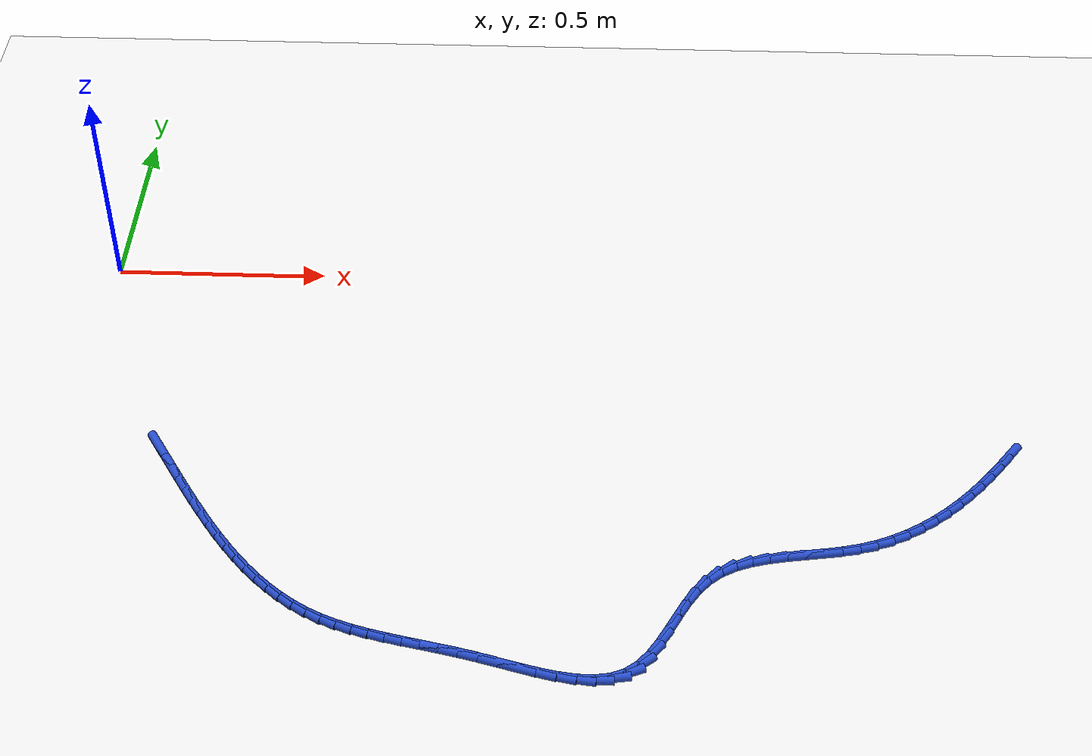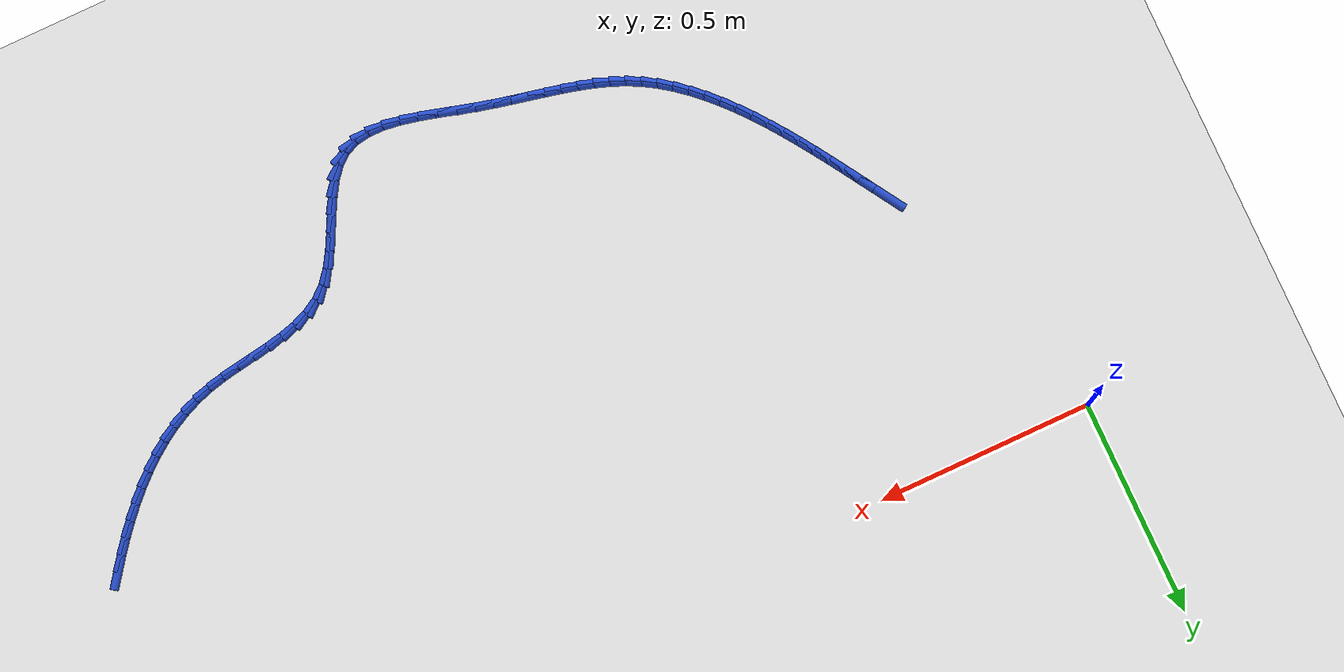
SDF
<sdf version="1.6">
 <world name="default">
  <model name="ground_plane">
   <static>1</static>
   <link name="link">
    <collision name="collision">
     <geometry><plane><normal>0 0 1</normal><size>100 100</size></plane></geometry>
     <surface><friction><ode><mu>100</mu><mu2>50</mu2></ode></friction></surface>
    </collision>
    <visual name="visual">
     <cast_shadows>0</cast_shadows>
     <geometry><plane><normal>0 0 1</normal><size>100 100</size></plane></geometry>
     <material>
      <script><uri>file://media/materials/scripts/gazebo.material</uri><name>Gazebo/WhiteGlow</name></script>
     </material>
    </visual>
   </link>
  </model>
  <model name="line">
   <link name="link_110">
    <pose>2.08453415368456 -0.5656157558891729 0.01 0 1.57 0.9310244561772125</pose>
    <collision name="collision">
     <geometry><cylinder><radius>0.01</radius><length>0.08</length></cylinder></geometry>
    </collision>
    <visual name="visual">
     <material>
      <script><name>Gazebo/Blue</name><uri>file://media/materials/scripts/gazebo.material</uri></script>
     </material>
     <geometry><cylinder><radius>0.01</radius><length>0.08</length></cylinder></geometry>
    </visual>
   </link>
   <link name="link_111">
    <pose>2.0612705069132855 -0.5968761449683793 0.01 0 1.57 0.9034182392413537</pose>
    <collision name="collision">
     <geometry><cylinder><radius>0.01</radius><length>0.08</length></cylinder></geometry>
    </collision>
    <visual name="visual">
     <material>
      <script><name>Gazebo/Blue</name><uri>file://media/materials/scripts/gazebo.material</uri></script>
     </material>
     <geometry><cylinder><radius>0.01</radius><length>0.08</length></cylinder></geometry>
    </visual>
   </link>
   <link name="link_112">
    <pose>2.037150171619287 -0.6274858857505433 0.01 0 1.57 0.8708638876160378</pose>
    <collision name="collision">
     <geometry><cylinder><radius>0.01</radius><length>0.08</length></cylinder></geometry>
    </collision>
    <visual name="visual">
     <material>
      <script><name>Gazebo/Blue</name><uri>file://media/materials/scripts/gazebo.material</uri></script>
     </material>
     <geometry><cylinder><radius>0.01</radius><length>0.08</length></cylinder></geometry>
    </visual>
   </link>
   <link name="link_113">
    <pose>2.012105774432301 -0.6572237190737059 0.01 0 1.57 0.833072517174802</pose>
    <collision name="collision">
     <geometry><cylinder><radius>0.01</radius><length>0.08</length></cylinder></geometry>
    </collision>
    <visual name="visual">
     <material>
      <script><name>Gazebo/Blue</name><uri>file://media/materials/scripts/gazebo.material</uri></script>
     </material>
     <geometry><cylinder><radius>0.01</radius><length>0.08</length></cylinder></geometry>
    </visual>
   </link>
   <link name="link_114">
    <pose>1.9860699419820655 -0.6858683857759046 0.01 0 1.57 0.7897270356927816</pose>
    <collision name="collision">
     <geometry><cylinder><radius>0.01</radius><length>0.08</length></cylinder></geometry>
    </collision>
    <visual name="visual">
     <material>
      <script><name>Gazebo/Blue</name><uri>file://media/materials/scripts/gazebo.material</uri></script>
     </material>
     <geometry><cylinder><radius>0.01</radius><length>0.08</length></cylinder></geometry>
    </visual>
   </link>
   <link name="link_115">
    <pose>1.958975300898319 -0.7131986266951783 0.01 0 1.57 0.7405102563816337</pose>
    <collision name="collision">
     <geometry><cylinder><radius>0.01</radius><length>0.08</length></cylinder></geometry>
    </collision>
    <visual name="visual">
     <material>
      <script><name>Gazebo/Blue</name><uri>file://media/materials/scripts/gazebo.material</uri></script>
     </material>
     <geometry><cylinder><radius>0.01</radius><length>0.08</length></cylinder></geometry>
    </visual>
   </link>
   <link name="link_116">
    <pose>1.9307544778107981 -0.7389931826695658 0.01 0 1.57 0.6851448146251082</pose>
    <collision name="collision">
     <geometry><cylinder><radius>0.01</radius><length>0.08</length></cylinder></geometry>
    </collision>
    <visual name="visual">
     <material>
      <script><name>Gazebo/Blue</name><uri>file://media/materials/scripts/gazebo.material</uri></script>
     </material>
     <geometry><cylinder><radius>0.01</radius><length>0.08</length></cylinder></geometry>
    </visual>
   </link>
   <link name="link_117">
    <pose>1.9013400993492406 -0.763030794537106 0.01 0 1.57 0.6234471575421582</pose>
    <collision name="collision">
     <geometry><cylinder><radius>0.01</radius><length>0.08</length></cylinder></geometry>
    </collision>
    <visual name="visual">
     <material>
      <script><name>Gazebo/Blue</name><uri>file://media/materials/scripts/gazebo.material</uri></script>
     </material>
     <geometry><cylinder><radius>0.01</radius><length>0.08</length></cylinder></geometry>
    </visual>
   </link>
   <link name="link_118">
    <pose>1.8706647921433857 -0.7850902031358372 0.01 0 1.57 0.5553953139055888</pose>
    <collision name="collision">
     <geometry><cylinder><radius>0.01</radius><length>0.08</length></cylinder></geometry>
    </collision>
    <visual name="visual">
     <material>
      <script><name>Gazebo/Blue</name><uri>file://media/materials/scripts/gazebo.material</uri></script>
     </material>
     <geometry><cylinder><radius>0.01</radius><length>0.08</length></cylinder></geometry>
    </visual>
   </link>
   <link name="link_119">
    <pose>1.8386611828229682 -0.8049501493037988 0.01 0 1.57 0.48120519539025114</pose>
    <collision name="collision">
     <geometry><cylinder><radius>0.01</radius><length>0.08</length></cylinder></geometry>
    </collision>
    <visual name="visual">
     <material>
      <script><name>Gazebo/Blue</name><uri>file://media/materials/scripts/gazebo.material</uri></script>
     </material>
     <geometry><cylinder><radius>0.01</radius><length>0.08</length></cylinder></geometry>
    </visual>
   </link>
   <link name="link_120">
    <pose>1.8052618980177275 -0.8223893738790298 0.01 0 1.57 0.40140290892158376</pose>
    <collision name="collision">
     <geometry><cylinder><radius>0.01</radius><length>0.08</length></cylinder></geometry>
    </collision>
    <visual name="visual">
     <material>
      <script><name>Gazebo/Blue</name><uri>file://media/materials/scripts/gazebo.material</uri></script>
     </material>
     <geometry><cylinder><radius>0.01</radius><length>0.08</length></cylinder></geometry>
    </visual>
   </link>
   <link name="link_121">
    <pose>1.7703995643574006 -0.8371866176995684 0.01 0 1.57 0.31687293562548813</pose>
    <collision name="collision">
     <geometry><cylinder><radius>0.01</radius><length>0.08</length></cylinder></geometry>
    </collision>
    <visual name="visual">
     <material>
      <script><name>Gazebo/Blue</name><uri>file://media/materials/scripts/gazebo.material</uri></script>
     </material>
     <geometry><cylinder><radius>0.01</radius><length>0.08</length></cylinder></geometry>
    </visual>
   </link>
   <link name="link_122">
    <pose>1.7340068084717253 -0.8491206216034533 0.01 0 1.57 0.2344755096082431</pose>
    <collision name="collision">
     <geometry><cylinder><radius>0.01</radius><length>0.08</length></cylinder></geometry>
    </collision>
    <visual name="visual">
     <material>
      <script><name>Gazebo/Blue</name><uri>file://media/materials/scripts/gazebo.material</uri></script>
     </material>
     <geometry><cylinder><radius>0.01</radius><length>0.08</length></cylinder></geometry>
    </visual>
   </link>
   <link name="link_123">
    <pose>1.6961248564169946 -0.8581694538353228 0.01 0 1.57 0.17870412814628275</pose>
    <collision name="collision">
     <geometry><cylinder><radius>0.01</radius><length>0.08</length></cylinder></geometry>
    </collision>
    <visual name="visual">
     <material>
      <script><name>Gazebo/Blue</name><uri>file://media/materials/scripts/gazebo.material</uri></script>
     </material>
     <geometry><cylinder><radius>0.01</radius><length>0.08</length></cylinder></geometry>
    </visual>
   </link>
   <link name="link_124">
    <pose>1.6572723371795077 -0.8651874256455041 0.01 0 1.57 0.1540322729147679</pose>
    <collision name="collision">
     <geometry><cylinder><radius>0.01</radius><length>0.08</length></cylinder></geometry>
    </collision>
    <visual name="visual">
     <material>
      <script><name>Gazebo/Blue</name><uri>file://media/materials/scripts/gazebo.material</uri></script>
     </material>
     <geometry><cylinder><radius>0.01</radius><length>0.08</length></cylinder></geometry>
    </visual>
   </link>
   <link name="link_125">
    <pose>1.6180990252568546 -0.8712695576092416 0.01 0 1.57 0.1593135291493583</pose>
    <collision name="collision">
     <geometry><cylinder><radius>0.01</radius><length>0.08</length></cylinder></geometry>
    </collision>
    <visual name="visual">
     <material>
      <script><name>Gazebo/Blue</name><uri>file://media/materials/scripts/gazebo.material</uri></script>
     </material>
     <geometry><cylinder><radius>0.01</radius><length>0.08</length></cylinder></geometry>
    </visual>
   </link>
   <link name="link_126">
    <pose>1.5792546988642848 -0.8775108771253144 0.01 0 1.57 0.19542480885076474</pose>
    <collision name="collision">
     <geometry><cylinder><radius>0.01</radius><length>0.08</length></cylinder></geometry>
    </collision>
    <visual name="visual">
     <material>
      <script><name>Gazebo/Blue</name><uri>file://media/materials/scripts/gazebo.material</uri></script>
     </material>
     <geometry><cylinder><radius>0.01</radius><length>0.08</length></cylinder></geometry>
    </visual>
   </link>
   <link name="link_127">
    <pose>1.5413891362170502 -0.8850064115925 0.01 0 1.57 0.26527452914388294</pose>
    <collision name="collision">
     <geometry><cylinder><radius>0.01</radius><length>0.08</length></cylinder></geometry>
    </collision>
    <visual name="visual">
     <material>
      <script><name>Gazebo/Blue</name><uri>file://media/materials/scripts/gazebo.material</uri></script>
     </material>
     <geometry><cylinder><radius>0.01</radius><length>0.08</length></cylinder></geometry>
    </visual>
   </link>
   <link name="link_128">
    <pose>1.505152115530401 -0.8948511884095771 0.01 0 1.57 0.37300966859545026</pose>
    <collision name="collision">
     <geometry><cylinder><radius>0.01</radius><length>0.08</length></cylinder></geometry>
    </collision>
    <visual name="visual">
     <material>
      <script><name>Gazebo/Blue</name><uri>file://media/materials/scripts/gazebo.material</uri></script>
     </material>
     <geometry><cylinder><radius>0.01</radius><length>0.08</length></cylinder></geometry>
    </visual>
   </link>
   <link name="link_129">
    <pose>1.4711934150195887 -0.908140234975324 0.01 0 1.57 0.5214890315296737</pose>
    <collision name="collision">
     <geometry><cylinder><radius>0.01</radius><length>0.08</length></cylinder></geometry>
    </collision>
    <visual name="visual">
     <material>
      <script><name>Gazebo/Blue</name><uri>file://media/materials/scripts/gazebo.material</uri></script>
     </material>
     <geometry><cylinder><radius>0.01</radius><length>0.08</length></cylinder></geometry>
    </visual>
   </link>
   <link name="link_130">
    <pose>1.4401628128998634 -0.9259685786885188 0.01 0 1.57 0.7068564188231896</pose>
    <collision name="collision">
     <geometry><cylinder><radius>0.01</radius><length>0.08</length></cylinder></geometry>
    </collision>
    <visual name="visual">
     <material>
      <script><name>Gazebo/Blue</name><uri>file://media/materials/scripts/gazebo.material</uri></script>
     </material>
     <geometry><cylinder><radius>0.01</radius><length>0.08</length></cylinder></geometry>
    </visual>
   </link>
   <link name="link_131">
    <pose>1.4127039788329236 -0.949420546941074 0.01 0 1.57 0.8868099750056615</pose>
    <collision name="collision">
     <geometry><cylinder><radius>0.01</radius><length>0.08</length></cylinder></geometry>
    </collision>
    <visual name="visual">
     <material>
      <script><name>Gazebo/Blue</name><uri>file://media/materials/scripts/gazebo.material</uri></script>
     </material>
     <geometry><cylinder><radius>0.01</radius><length>0.08</length></cylinder></geometry>
    </visual>
   </link>
   <link name="link_132">
    <pose>1.3889065382894354 -0.9786099793332508 0.01 0 1.57 1.007530499968691</pose>
    <collision name="collision">
     <geometry><cylinder><radius>0.01</radius><length>0.08</length></cylinder></geometry>
    </collision>
    <visual name="visual">
     <material>
      <script><name>Gazebo/Blue</name><uri>file://media/materials/scripts/gazebo.material</uri></script>
     </material>
     <geometry><cylinder><radius>0.01</radius><length>0.08</length></cylinder></geometry>
    </visual>
   </link>
   <link name="link_133">
    <pose>1.3678715497247695 -1.0119190986825695 0.01 0 1.57 1.0749571563404967</pose>
    <collision name="collision">
     <geometry><cylinder><radius>0.01</radius><length>0.08</length></cylinder></geometry>
    </collision>
    <visual name="visual">
     <material>
      <script><name>Gazebo/Blue</name><uri>file://media/materials/scripts/gazebo.material</uri></script>
     </material>
     <geometry><cylinder><radius>0.01</radius><length>0.08</length></cylinder></geometry>
    </visual>
   </link>
   <link name="link_134">
    <pose>1.3485978162575671 -1.0475510129317118 0.01 0 1.57 1.0975757412525429</pose>
    <collision name="collision">
     <geometry><cylinder><radius>0.01</radius><length>0.08</length></cylinder></geometry>
    </collision>
    <visual name="visual">
     <material>
      <script><name>Gazebo/Blue</name><uri>file://media/materials/scripts/gazebo.material</uri></script>
     </material>
     <geometry><cylinder><radius>0.01</radius><length>0.08</length></cylinder></geometry>
    </visual>
   </link>
   <link name="link_135">
    <pose>1.3300841410064659 -1.0837088300233595 0.01 0 1.57 1.0775307542923391</pose>
    <collision name="collision">
     <geometry><cylinder><radius>0.01</radius><length>0.08</length></cylinder></geometry>
    </collision>
    <visual name="visual">
     <material>
      <script><name>Gazebo/Blue</name><uri>file://media/materials/scripts/gazebo.material</uri></script>
     </material>
     <geometry><cylinder><radius>0.01</radius><length>0.08</length></cylinder></geometry>
    </visual>
   </link>
   <link name="link_136">
    <pose>1.3113293270901039 -1.1185956579001943 0.01 0 1.57 1.0097079621812357</pose>
    <collision name="collision">
     <geometry><cylinder><radius>0.01</radius><length>0.08</length></cylinder></geometry>
    </collision>
    <visual name="visual">
     <material>
      <script><name>Gazebo/Blue</name><uri>file://media/materials/scripts/gazebo.material</uri></script>
     </material>
     <geometry><cylinder><radius>0.01</radius><length>0.08</length></cylinder></geometry>
    </visual>
   </link>
   <link name="link_137">
    <pose>1.2913321776271212 -1.1504146045048982 0.01 0 1.57 0.8809192681942881</pose>
    <collision name="collision">
     <geometry><cylinder><radius>0.01</radius><length>0.08</length></cylinder></geometry>
    </collision>
    <visual name="visual">
     <material>
      <script><name>Gazebo/Blue</name><uri>file://media/materials/scripts/gazebo.material</uri></script>
     </material>
     <geometry><cylinder><radius>0.01</radius><length>0.08</length></cylinder></geometry>
    </visual>
   </link>
   <link name="link_138">
    <pose>1.2690914957361565 -1.1773687777801531 0.01 0 1.57 0.6724491084942936</pose>
    <collision name="collision">
     <geometry><cylinder><radius>0.01</radius><length>0.08</length></cylinder></geometry>
    </collision>
    <visual name="visual">
     <material>
      <script><name>Gazebo/Blue</name><uri>file://media/materials/scripts/gazebo.material</uri></script>
     </material>
     <geometry><cylinder><radius>0.01</radius><length>0.08</length></cylinder></geometry>
    </visual>
   </link>
   <link name="link_139">
    <pose>1.2436061624097208 -1.1976614302191255 0.01 0 1.57 0.4002424604339248</pose>
    <collision name="collision">
     <geometry><cylinder><radius>0.01</radius><length>0.08</length></cylinder></geometry>
    </collision>
    <visual name="visual">
     <material>
      <script><name>Gazebo/Blue</name><uri>file://media/materials/scripts/gazebo.material</uri></script>
     </material>
     <geometry><cylinder><radius>0.01</radius><length>0.08</length></cylinder></geometry>
    </visual>
   </link>
   <link name="link_140">
    <pose>1.2142015736462228 -1.2101018956775502 0.01 0 1.57 0.16218978537011858</pose>
    <collision name="collision">
     <geometry><cylinder><radius>0.01</radius><length>0.08</length></cylinder></geometry>
    </collision>
    <visual name="visual">
     <material>
      <script><name>Gazebo/Blue</name><uri>file://media/materials/scripts/gazebo.material</uri></script>
     </material>
     <geometry><cylinder><radius>0.01</radius><length>0.08</length></cylinder></geometry>
    </visual>
   </link>
   <link name="link_141">
    <pose>1.1812752174323389 -1.215489538978515 0.01 0 1.57 -0.012781309790610708</pose>
    <collision name="collision">
     <geometry><cylinder><radius>0.01</radius><length>0.08</length></cylinder></geometry>
    </collision>
    <visual name="visual">
     <material>
      <script><name>Gazebo/Blue</name><uri>file://media/materials/scripts/gazebo.material</uri></script>
     </material>
     <geometry><cylinder><radius>0.01</radius><length>0.08</length></cylinder></geometry>
    </visual>
   </link>
   <link name="link_142">
    <pose>1.145444288716161 -1.2150315478388054 0.01 0 1.57 -0.13291230057839293</pose>
    <collision name="collision">
     <geometry><cylinder><radius>0.01</radius><length>0.08</length></cylinder></geometry>
    </collision>
    <visual name="visual">
     <material>
      <script><name>Gazebo/Blue</name><uri>file://media/materials/scripts/gazebo.material</uri></script>
     </material>
     <geometry><cylinder><radius>0.01</radius><length>0.08</length></cylinder></geometry>
    </visual>
   </link>
   <link name="link_143">
    <pose>1.1073259824457835 -1.2099351099752085 0.01 0 1.57 -0.21113159055392605</pose>
    <collision name="collision">
     <geometry><cylinder><radius>0.01</radius><length>0.08</length></cylinder></geometry>
    </collision>
    <visual name="visual">
     <material>
      <script><name>Gazebo/Blue</name><uri>file://media/materials/scripts/gazebo.material</uri></script>
     </material>
     <geometry><cylinder><radius>0.01</radius><length>0.08</length></cylinder></geometry>
    </visual>
   </link>
   <link name="link_144">
    <pose>1.0675374935692985 -1.2014074131045098 0.01 0 1.57 -0.25741556513287417</pose>
    <collision name="collision">
     <geometry><cylinder><radius>0.01</radius><length>0.08</length></cylinder></geometry>
    </collision>
    <visual name="visual">
     <material>
      <script><name>Gazebo/Blue</name><uri>file://media/materials/scripts/gazebo.material</uri></script>
     </material>
     <geometry><cylinder><radius>0.01</radius><length>0.08</length></cylinder></geometry>
    </visual>
   </link>
   <link name="link_145">
    <pose>1.0266960170347998 -1.1906556449434966 0.01 0 1.57 -0.2777428958912334</pose>
    <collision name="collision">
     <geometry><cylinder><radius>0.01</radius><length>0.08</length></cylinder></geometry>
    </collision>
    <visual name="visual">
     <material>
      <script><name>Gazebo/Blue</name><uri>file://media/materials/scripts/gazebo.material</uri></script>
     </material>
     <geometry><cylinder><radius>0.01</radius><length>0.08</length></cylinder></geometry>
    </visual>
   </link>
   <link name="link_146">
    <pose>0.9854187477903799 -1.1788869932089547 0.01 0 1.57 -0.27462142993731015</pose>
    <collision name="collision">
     <geometry><cylinder><radius>0.01</radius><length>0.08</length></cylinder></geometry>
    </collision>
    <visual name="visual">
     <material>
      <script><name>Gazebo/Blue</name><uri>file://media/materials/scripts/gazebo.material</uri></script>
     </material>
     <geometry><cylinder><radius>0.01</radius><length>0.08</length></cylinder></geometry>
    </visual>
   </link>
   <link name="link_147">
    <pose>0.9443228807841316 -1.1673086456176707 0.01 0 1.57 -0.2516260920748868</pose>
    <collision name="collision">
     <geometry><cylinder><radius>0.01</radius><length>0.08</length></cylinder></geometry>
    </collision>
    <visual name="visual">
     <material>
      <script><name>Gazebo/Blue</name><uri>file://media/materials/scripts/gazebo.material</uri></script>
     </material>
     <geometry><cylinder><radius>0.01</radius><length>0.08</length></cylinder></geometry>
    </visual>
   </link>
   <link name="link_148">
    <pose>0.9039561268650124 -1.1569313722559977 0.01 0 1.57 -0.2300725961323307</pose>
    <collision name="collision">
     <geometry><cylinder><radius>0.01</radius><length>0.08</length></cylinder></geometry>
    </collision>
    <visual name="visual">
     <material>
      <script><name>Gazebo/Blue</name><uri>file://media/materials/scripts/gazebo.material</uri></script>
     </material>
     <geometry><cylinder><radius>0.01</radius><length>0.08</length></cylinder></geometry>
    </visual>
   </link>
   <link name="link_149">
    <pose>0.8644842560772689 -1.1476862730589976 0.01 0 1.57 -0.21832291819577787</pose>
    <collision name="collision">
     <geometry><cylinder><radius>0.01</radius><length>0.08</length></cylinder></geometry>
    </collision>
    <visual name="visual">
     <material>
      <script><name>Gazebo/Blue</name><uri>file://media/materials/scripts/gazebo.material</uri></script>
     </material>
     <geometry><cylinder><radius>0.01</radius><length>0.08</length></cylinder></geometry>
    </visual>
   </link>
   <link name="link_150">
    <pose>0.8259424963682094 -1.139135431601571 0.01 0 1.57 -0.21726050159561183</pose>
    <collision name="collision">
     <geometry><cylinder><radius>0.01</radius><length>0.08</length></cylinder></geometry>
    </collision>
    <visual name="visual">
     <material>
      <script><name>Gazebo/Blue</name><uri>file://media/materials/scripts/gazebo.material</uri></script>
     </material>
     <geometry><cylinder><radius>0.01</radius><length>0.08</length></cylinder></geometry>
    </visual>
   </link>
   <link name="link_151">
    <pose>0.7883659624623665 -1.130840611400509 0.01 0 1.57 -0.22774286857316234</pose>
    <collision name="collision">
     <geometry><cylinder><radius>0.01</radius><length>0.08</length></cylinder></geometry>
    </collision>
    <visual name="visual">
     <material>
      <script><name>Gazebo/Blue</name><uri>file://media/materials/scripts/gazebo.material</uri></script>
     </material>
     <geometry><cylinder><radius>0.01</radius><length>0.08</length></cylinder></geometry>
    </visual>
   </link>
   <link name="link_152">
    <pose>0.7517897690842733 -1.1223635759726036 0.01 0 1.57 -0.25059283102139623</pose>
    <collision name="collision">
     <geometry><cylinder><radius>0.01</radius><length>0.08</length></cylinder></geometry>
    </collision>
    <visual name="visual">
     <material>
      <script><name>Gazebo/Blue</name><uri>file://media/materials/scripts/gazebo.material</uri></script>
     </material>
     <geometry><cylinder><radius>0.01</radius><length>0.08</length></cylinder></geometry>
    </visual>
   </link>
   <link name="link_153">
    <pose>0.7162490309584612 -1.1132660888346457 0.01 0 1.57 -0.2865290679851567</pose>
    <collision name="collision">
     <geometry><cylinder><radius>0.01</radius><length>0.08</length></cylinder></geometry>
    </collision>
    <visual name="visual">
     <material>
      <script><name>Gazebo/Blue</name><uri>file://media/materials/scripts/gazebo.material</uri></script>
     </material>
     <geometry><cylinder><radius>0.01</radius><length>0.08</length></cylinder></geometry>
    </visual>
   </link>
   <link name="link_154">
    <pose>0.681778862809463 -1.1031099135034272 0.01 0 1.57 -0.3360213153733071</pose>
    <collision name="collision">
     <geometry><cylinder><radius>0.01</radius><length>0.08</length></cylinder></geometry>
    </collision>
    <visual name="visual">
     <material>
      <script><name>Gazebo/Blue</name><uri>file://media/materials/scripts/gazebo.material</uri></script>
     </material>
     <geometry><cylinder><radius>0.01</radius><length>0.08</length></cylinder></geometry>
    </visual>
   </link>
   <link name="link_155">
    <pose>0.6484143793618116 -1.0914568134957396 0.01 0 1.57 -0.39905991247766115</pose>
    <collision name="collision">
     <geometry><cylinder><radius>0.01</radius><length>0.08</length></cylinder></geometry>
    </collision>
    <visual name="visual">
     <material>
      <script><name>Gazebo/Blue</name><uri>file://media/materials/scripts/gazebo.material</uri></script>
     </material>
     <geometry><cylinder><radius>0.01</radius><length>0.08</length></cylinder></geometry>
    </visual>
   </link>
   <link name="link_156">
    <pose>0.6161906953400393 -1.0778685523283742 0.01 0 1.57 -0.47448632281215214</pose>
    <collision name="collision">
     <geometry><cylinder><radius>0.01</radius><length>0.08</length></cylinder></geometry>
    </collision>
    <visual name="visual">
     <material>
      <script><name>Gazebo/Blue</name><uri>file://media/materials/scripts/gazebo.material</uri></script>
     </material>
     <geometry><cylinder><radius>0.01</radius><length>0.08</length></cylinder></geometry>
    </visual>
   </link>
   <link name="link_157">
    <pose>0.5851406883144338 -1.0619205622615189 0.01 0 1.57 -0.5524509761230534</pose>
    <collision name="collision">
     <geometry><cylinder><radius>0.01</radius><length>0.08</length></cylinder></geometry>
    </collision>
    <visual name="visual">
     <material>
      <script><name>Gazebo/Blue</name><uri>file://media/materials/scripts/gazebo.material</uri></script>
     </material>
     <geometry><cylinder><radius>0.01</radius><length>0.08</length></cylinder></geometry>
    </visual>
   </link>
   <link name="link_158">
    <pose>0.5552475332269015 -1.0434919526375415 0.01 0 1.57 -0.6239069258525003</pose>
    <collision name="collision">
     <geometry><cylinder><radius>0.01</radius><length>0.08</length></cylinder></geometry>
    </collision>
    <visual name="visual">
     <material>
      <script><name>Gazebo/Blue</name><uri>file://media/materials/scripts/gazebo.material</uri></script>
     </material>
     <geometry><cylinder><radius>0.01</radius><length>0.08</length></cylinder></geometry>
    </visual>
   </link>
   <link name="link_159">
    <pose>0.5264456566257986 -1.0227596796209293 0.01 0 1.57 -0.6882869161726873</pose>
    <collision name="collision">
     <geometry><cylinder><radius>0.01</radius><length>0.08</length></cylinder></geometry>
    </collision>
    <visual name="visual">
     <material>
      <script><name>Gazebo/Blue</name><uri>file://media/materials/scripts/gazebo.material</uri></script>
     </material>
     <geometry><cylinder><radius>0.01</radius><length>0.08</length></cylinder></geometry>
    </visual>
   </link>
   <link name="link_160">
    <pose>0.4986674387746845 -0.9999132019301825 0.01 0 1.57 -0.7456668066837909</pose>
    <collision name="collision">
     <geometry><cylinder><radius>0.01</radius><length>0.08</length></cylinder></geometry>
    </collision>
    <visual name="visual">
     <material>
      <script><name>Gazebo/Blue</name><uri>file://media/materials/scripts/gazebo.material</uri></script>
     </material>
     <geometry><cylinder><radius>0.01</radius><length>0.08</length></cylinder></geometry>
    </visual>
   </link>
   <link name="link_161">
    <pose>0.47184525993712056 -0.9751419782838016 0.01 0 1.57 -0.7963197041413932</pose>
    <collision name="collision">
     <geometry><cylinder><radius>0.01</radius><length>0.08</length></cylinder></geometry>
    </collision>
    <visual name="visual">
     <material>
      <script><name>Gazebo/Blue</name><uri>file://media/materials/scripts/gazebo.material</uri></script>
     </material>
     <geometry><cylinder><radius>0.01</radius><length>0.08</length></cylinder></geometry>
    </visual>
   </link>
   <link name="link_162">
    <pose>0.4459115003766672 -0.9486354674002873 0.01 0 1.57 -0.8406294881167922</pose>
    <collision name="collision">
     <geometry><cylinder><radius>0.01</radius><length>0.08</length></cylinder></geometry>
    </collision>
    <visual name="visual">
     <material>
      <script><name>Gazebo/Blue</name><uri>file://media/materials/scripts/gazebo.material</uri></script>
     </material>
     <geometry><cylinder><radius>0.01</radius><length>0.08</length></cylinder></geometry>
    </visual>
   </link>
   <link name="link_163">
    <pose>0.4207985403568849 -0.9205831279981395 0.01 0 1.57 -0.8790248861098225</pose>
    <collision name="collision">
     <geometry><cylinder><radius>0.01</radius><length>0.08</length></cylinder></geometry>
    </collision>
    <visual name="visual">
     <material>
      <script><name>Gazebo/Blue</name><uri>file://media/materials/scripts/gazebo.material</uri></script>
     </material>
     <geometry><cylinder><radius>0.01</radius><length>0.08</length></cylinder></geometry>
    </visual>
   </link>
   <link name="link_164">
    <pose>0.39643876014133445 -0.8911744187958593 0.01 0 1.57 -0.9119336044502959</pose>
    <collision name="collision">
     <geometry><cylinder><radius>0.01</radius><length>0.08</length></cylinder></geometry>
    </collision>
    <visual name="visual">
     <material>
      <script><name>Gazebo/Blue</name><uri>file://media/materials/scripts/gazebo.material</uri></script>
     </material>
     <geometry><cylinder><radius>0.01</radius><length>0.08</length></cylinder></geometry>
    </visual>
   </link>
   <link name="link_165">
    <pose>0.3727645399935761 -0.860598798511947 0.01 0 1.57 -0.9397527811096994</pose>
    <collision name="collision">
     <geometry><cylinder><radius>0.01</radius><length>0.08</length></cylinder></geometry>
    </collision>
    <visual name="visual">
     <material>
      <script><name>Gazebo/Blue</name><uri>file://media/materials/scripts/gazebo.material</uri></script>
     </material>
     <geometry><cylinder><radius>0.01</radius><length>0.08</length></cylinder></geometry>
    </visual>
   </link>
   <link name="link_166">
    <pose>0.3497082601771711 -0.8290457258649035 0.01 0 1.57 -0.9628312770305999</pose>
    <collision name="collision">
     <geometry><cylinder><radius>0.01</radius><length>0.08</length></cylinder></geometry>
    </collision>
    <visual name="visual">
     <material>
      <script><name>Gazebo/Blue</name><uri>file://media/materials/scripts/gazebo.material</uri></script>
     </material>
     <geometry><cylinder><radius>0.01</radius><length>0.08</length></cylinder></geometry>
    </visual>
   </link>
   <link name="link_167">
    <pose>0.32720230095567904 -0.7967046595732286 0.01 0 1.57 -0.9814597918222447</pose>
    <collision name="collision">
     <geometry><cylinder><radius>0.01</radius><length>0.08</length></cylinder></geometry>
    </collision>
    <visual name="visual">
     <material>
      <script><name>Gazebo/Blue</name><uri>file://media/materials/scripts/gazebo.material</uri></script>
     </material>
     <geometry><cylinder><radius>0.01</radius><length>0.08</length></cylinder></geometry>
    </visual>
   </link>
   <link name="link_168">
    <pose>0.3051790425926609 -0.7637650583554224 0.01 0 1.57 -0.9958656571715963</pose>
    <collision name="collision">
     <geometry><cylinder><radius>0.01</radius><length>0.08</length></cylinder></geometry>
    </collision>
    <visual name="visual">
     <material>
      <script><name>Gazebo/Blue</name><uri>file://media/materials/scripts/gazebo.material</uri></script>
     </material>
     <geometry><cylinder><radius>0.01</radius><length>0.08</length></cylinder></geometry>
    </visual>
   </link>
   <link name="link_169">
    <pose>0.2835708653516772 -0.7304163809299863 0.01 0 1.57 -1.006210014456723</pose>
    <collision name="collision">
     <geometry><cylinder><radius>0.01</radius><length>0.08</length></cylinder></geometry>
    </collision>
    <visual name="visual">
     <material>
      <script><name>Gazebo/Blue</name><uri>file://media/materials/scripts/gazebo.material</uri></script>
     </material>
     <geometry><cylinder><radius>0.01</radius><length>0.08</length></cylinder></geometry>
    </visual>
   </link>
   <link name="link_170">
    <pose>0.2623101494962886 -0.6968480860154204 0.01 0 1.57 -1.012585766812956</pose>
    <collision name="collision">
     <geometry><cylinder><radius>0.01</radius><length>0.08</length></cylinder></geometry>
    </collision>
    <visual name="visual">
     <material>
      <script><name>Gazebo/Blue</name><uri>file://media/materials/scripts/gazebo.material</uri></script>
     </material>
     <geometry><cylinder><radius>0.01</radius><length>0.08</length></cylinder></geometry>
    </visual>
   </link>
   <link name="link_171">
    <pose>0.24132927529005546 -0.6632496323302247 0.01 0 1.57 -1.015015186418542</pose>
    <collision name="collision">
     <geometry><cylinder><radius>0.01</radius><length>0.08</length></cylinder></geometry>
    </collision>
    <visual name="visual">
     <material>
      <script><name>Gazebo/Blue</name><uri>file://media/materials/scripts/gazebo.material</uri></script>
     </material>
     <geometry><cylinder><radius>0.01</radius><length>0.08</length></cylinder></geometry>
    </visual>
   </link>
   <link name="link_172">
    <pose>0.22056062299653897 -0.6298104785929012 0.01 0 1.57 -1.0136904581307096</pose>
    <collision name="collision">
     <geometry><cylinder><radius>0.01</radius><length>0.08</length></cylinder></geometry>
    </collision>
    <visual name="visual">
     <material>
      <script><name>Gazebo/Blue</name><uri>file://media/materials/scripts/gazebo.material</uri></script>
     </material>
     <geometry><cylinder><radius>0.01</radius><length>0.08</length></cylinder></geometry>
    </visual>
   </link>
   <link name="link_173">
    <pose>0.19994263074088672 -0.5967118092736367 0.01 0 1.57 -1.0134425023014326</pose>
    <collision name="collision">
     <geometry><cylinder><radius>0.01</radius><length>0.08</length></cylinder></geometry>
    </collision>
    <visual name="visual">
     <material>
      <script><name>Gazebo/Blue</name><uri>file://media/materials/scripts/gazebo.material</uri></script>
     </material>
     <geometry><cylinder><radius>0.01</radius><length>0.08</length></cylinder></geometry>
    </visual>
   </link>
  </model>
 </world>
</sdf>
